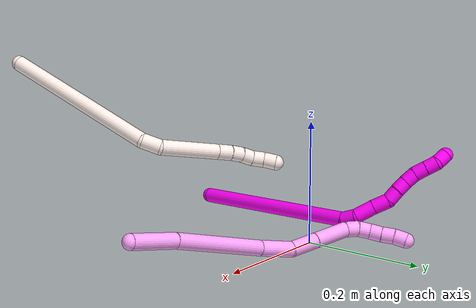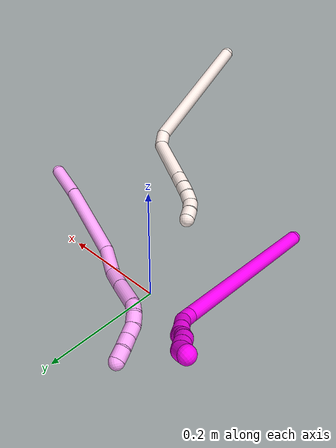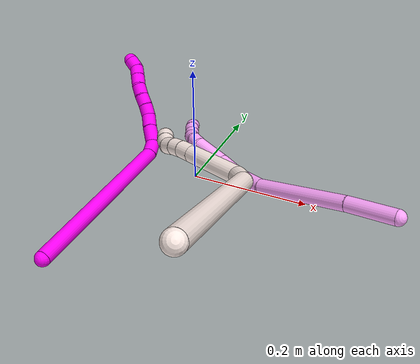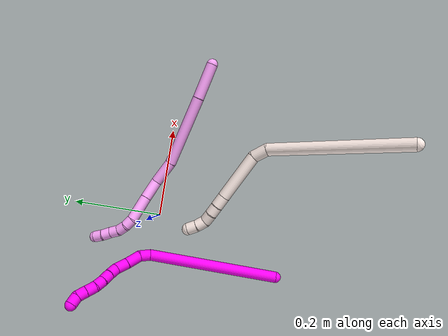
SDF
<sdf version="1.7">
 <world name="default">
  <model name="photoneo_s_sensor">
   <static>1</static>
   <pose>0 0 2 1.57079 1.57079 3.14159</pose>
   <link name="link">
    <inertial><mass>0.1</mass></inertial>
    <sensor name="sensor" type="depth">
     <update_rate>30</update_rate>
     <camera>
      <horizontal_fov>1.22</horizontal_fov>
      <image><width>1920</width><height>1200</height><format>B8G8R8</format></image>
      <clip><near>0.1</near><far>4</far></clip>
      <depth_camera><output>points</output></depth_camera>
     </camera>
     <plugin name="camera_plugin" filename="libgazebo_ros_depth_camera.so">
      <baseline>0.2</baseline>
      <alwaysOn>1</alwaysOn>
      <updateRate>0.0</updateRate>
      <cameraName>camera_ir</cameraName>
      <imageTopicName>/camera/color/image_raw</imageTopicName>
      <cameraInfoTopicName>/camera/color/camera_info</cameraInfoTopicName>
      <depthImageTopicName>/camera/depth/image_raw</depthImageTopicName>
      <depthImageCameraInfoTopicName>/camera/depth/camera_info</depthImageCameraInfoTopicName>
      <pointCloudTopicName>/camera/depth/points</pointCloudTopicName>
      <frameName>fr_optical</frameName>
      <pointCloudCutoff>0.1</pointCloudCutoff>
      <pointCloudCutoffMax>2.0</pointCloudCutoffMax>
      <distortionK1>0</distortionK1>
      <distortionK2>0</distortionK2>
      <distortionK3>0</distortionK3>
      <distortionT1>0</distortionT1>
      <distortionT2>0</distortionT2>
      <CxPrime>0</CxPrime>
      <Cx>0</Cx>
      <Cy>0</Cy>
      <focalLength>0</focalLength>
      <hackBaseline>0</hackBaseline>
     </plugin>
    </sensor>
   </link>
  </model>
  <model name="bin">
   <static>1</static>
   <link name="bottom">
    <collision name="collision-bottom">
     <pose>0 0 -0.01 0 -0 0</pose>
     <geometry><box><size>0.8 0.6 0.02</size></box></geometry>
     <surface>
      <friction><ode><mu>100</mu><mu2>100</mu2></ode></friction>
      <contact><collide_bitmask>65535</collide_bitmask></contact>
     </surface>
    </collision>
   </link>
   <link name="west_wall">
    <collision name="collision-west_wall">
     <pose>-0.41 0 0.1 0 -0 0</pose>
     <geometry><box><size>0.02 0.6 0.2</size></box></geometry>
     <surface>
      <friction><ode><mu>100</mu><mu2>100</mu2></ode></friction>
      <contact><collide_bitmask>65535</collide_bitmask></contact>
     </surface>
    </collision>
   </link>
   <link name="east_wall">
    <collision name="collision-east_wall">
     <pose>0.41 0 0.1 0 -0 0</pose>
     <geometry><box><size>0.02 0.6 0.2</size></box></geometry>
     <surface>
      <friction><ode><mu>100</mu><mu2>100</mu2></ode></friction>
      <contact><collide_bitmask>65535</collide_bitmask></contact>
     </surface>
    </collision>
   </link>
   <link name="south_wall">
    <collision name="collision-south_wall">
     <pose>0 -0.31 0.1 0 -0 0</pose>
     <geometry><box><size>0.8 0.02 0.2</size></box></geometry>
     <surface>
      <friction><ode><mu>100</mu><mu2>100</mu2></ode></friction>
      <contact><collide_bitmask>65535</collide_bitmask></contact>
     </surface>
    </collision>
   </link>
   <link name="north_wall">
    <collision name="collision-north_wall">
     <pose>0 0.31 0.1 0 -0 0</pose>
     <geometry><box><size>0.8 0.02 0.2</size></box></geometry>
     <surface>
      <friction><ode><mu>100</mu><mu2>100</mu2></ode></friction>
      <contact><collide_bitmask>65535</collide_bitmask></contact>
     </surface>
    </collision>
   </link>
  </model>
  <model name="4">
   <static>0</static>
   <link name="4">
    <collision name="collision-cylinder-e_1_1_4">
     <pose>-0.018576 0.005208 -0.034584 -2.99214 -0.488256 2.55767</pose>
     <geometry><cylinder><radius>0.0125</radius><length>0.079202</length></cylinder></geometry>
     <surface>
      <friction><ode><mu>1.16</mu><mu2>1.16</mu2><slip1>0</slip1><slip2>0</slip2></ode></friction>
      <contact><ode><kp>1e+06</kp><kd>1</kd><max_vel>0</max_vel><min_depth>0.001</min_depth></ode></contact>
     </surface>
    </collision>
    <visual name="visual-cylinder-e_1_1_4">
     <pose>-0.018576 0.005208 -0.034584 -2.99214 -0.488256 2.55767</pose>
     <geometry><cylinder><radius>0.0125</radius><length>0.079202</length></cylinder></geometry>
     <material><ambient>1 0.65098 0.996078 1</ambient></material>
    </visual>
    <collision name="collision-cylinder-e_2_4_5">
     <pose>-0.068979 0.017455 -0.142574 -3.04599 -0.407434 2.68646</pose>
     <geometry><cylinder><radius>0.0125</radius><length>0.160635</length></cylinder></geometry>
     <surface>
      <friction><ode><mu>1.16</mu><mu2>1.16</mu2><slip1>0</slip1><slip2>0</slip2></ode></friction>
      <contact><ode><kp>1e+06</kp><kd>1</kd><max_vel>0</max_vel><min_depth>0.001</min_depth></ode></contact>
     </surface>
    </collision>
    <visual name="visual-cylinder-e_2_4_5">
     <pose>-0.068979 0.017455 -0.142574 -3.04599 -0.407434 2.68646</pose>
     <geometry><cylinder><radius>0.0125</radius><length>0.160635</length></cylinder></geometry>
     <material><ambient>1 0.65098 0.996078 1</ambient></material>
    </visual>
    <collision name="collision-cylinder-e_3_5_6">
     <pose>-0.108731 0.03296 -0.241421 -2.82036 -0.287412 1.45806</pose>
     <geometry><cylinder><radius>0.0125</radius><length>0.055918</length></cylinder></geometry>
     <surface>
      <friction><ode><mu>1.16</mu><mu2>1.16</mu2><slip1>0</slip1><slip2>0</slip2></ode></friction>
      <contact><ode><kp>1e+06</kp><kd>1</kd><max_vel>0</max_vel><min_depth>0.001</min_depth></ode></contact>
     </surface>
    </collision>
    <visual name="visual-cylinder-e_3_5_6">
     <pose>-0.108731 0.03296 -0.241421 -2.82036 -0.287412 1.45806</pose>
     <geometry><cylinder><radius>0.0125</radius><length>0.055918</length></cylinder></geometry>
     <material><ambient>1 0.65098 0.996078 1</ambient></material>
    </visual>
    <collision name="collision-cylinder-e_4_6_7">
     <pose>-0.128378 0.051735 -0.282708 -2.56477 -0.55501 1.53012</pose>
     <geometry><cylinder><radius>0.0125</radius><length>0.044487</length></cylinder></geometry>
     <surface>
      <friction><ode><mu>1.16</mu><mu2>1.16</mu2><slip1>0</slip1><slip2>0</slip2></ode></friction>
      <contact><ode><kp>1e+06</kp><kd>1</kd><max_vel>0</max_vel><min_depth>0.001</min_depth></ode></contact>
     </surface>
    </collision>
    <visual name="visual-cylinder-e_4_6_7">
     <pose>-0.128378 0.051735 -0.282708 -2.56477 -0.55501 1.53012</pose>
     <geometry><cylinder><radius>0.0125</radius><length>0.044487</length></cylinder></geometry>
     <material><ambient>1 0.65098 0.996078 1</ambient></material>
    </visual>
    <collision name="collision-cylinder-e_5_7_8">
     <pose>-0.155847 0.074719 -0.31951 -2.59766 -0.571452 1.62278</pose>
     <geometry><cylinder><radius>0.0125</radius><length>0.058234</length></cylinder></geometry>
     <surface>
      <friction><ode><mu>1.16</mu><mu2>1.16</mu2><slip1>0</slip1><slip2>0</slip2></ode></friction>
      <contact><ode><kp>1e+06</kp><kd>1</kd><max_vel>0</max_vel><min_depth>0.001</min_depth></ode></contact>
     </surface>
    </collision>
    <visual name="visual-cylinder-e_5_7_8">
     <pose>-0.155847 0.074719 -0.31951 -2.59766 -0.571452 1.62278</pose>
     <geometry><cylinder><radius>0.0125</radius><length>0.058234</length></cylinder></geometry>
     <material><ambient>1 0.65098 0.996078 1</ambient></material>
    </visual>
    <collision name="collision-cylinder-e_6_8_9">
     <pose>-0.174219 0.092537 -0.349246 -2.61163 -0.252403 0.87471</pose>
     <geometry><cylinder><radius>0.0125</radius><length>0.021017</length></cylinder></geometry>
     <surface>
      <friction><ode><mu>1.16</mu><mu2>1.16</mu2><slip1>0</slip1><slip2>0</slip2></ode></friction>
      <contact><ode><kp>1e+06</kp><kd>1</kd><max_vel>0</max_vel><min_depth>0.001</min_depth></ode></contact>
     </surface>
    </collision>
    <visual name="visual-cylinder-e_6_8_9">
     <pose>-0.174219 0.092537 -0.349246 -2.61163 -0.252403 0.87471</pose>
     <geometry><cylinder><radius>0.0125</radius><length>0.021017</length></cylinder></geometry>
     <material><ambient>1 0.65098 0.996078 1</ambient></material>
    </visual>
    <collision name="collision-cylinder-e_7_9_10">
     <pose>-0.176456 0.101836 -0.367117 -2.71293 0.038734 -0.177502</pose>
     <geometry><cylinder><radius>0.0125</radius><length>0.020006</length></cylinder></geometry>
     <surface>
      <friction><ode><mu>1.16</mu><mu2>1.16</mu2><slip1>0</slip1><slip2>0</slip2></ode></friction>
      <contact><ode><kp>1e+06</kp><kd>1</kd><max_vel>0</max_vel><min_depth>0.001</min_depth></ode></contact>
     </surface>
    </collision>
    <visual name="visual-cylinder-e_7_9_10">
     <pose>-0.176456 0.101836 -0.367117 -2.71293 0.038734 -0.177502</pose>
     <geometry><cylinder><radius>0.0125</radius><length>0.020006</length></cylinder></geometry>
     <material><ambient>1 0.65098 0.996078 1</ambient></material>
    </visual>
    <collision name="collision-cylinder-e_8_10_11">
     <pose>-0.173222 0.111621 -0.384036 -2.51804 0.287021 -0.842991</pose>
     <geometry><cylinder><radius>0.0125</radius><length>0.020109</length></cylinder></geometry>
     <surface>
      <friction><ode><mu>1.16</mu><mu2>1.16</mu2><slip1>0</slip1><slip2>0</slip2></ode></friction>
      <contact><ode><kp>1e+06</kp><kd>1</kd><max_vel>0</max_vel><min_depth>0.001</min_depth></ode></contact>
     </surface>
    </collision>
    <visual name="visual-cylinder-e_8_10_11">
     <pose>-0.173222 0.111621 -0.384036 -2.51804 0.287021 -0.842991</pose>
     <geometry><cylinder><radius>0.0125</radius><length>0.020109</length></cylinder></geometry>
     <material><ambient>1 0.65098 0.996078 1</ambient></material>
    </visual>
    <collision name="collision-cylinder-e_9_11_12">
     <pose>-0.168453 0.123456 -0.399613 -2.46639 0.191352 -0.533727</pose>
     <geometry><cylinder><radius>0.0125</radius><length>0.020222</length></cylinder></geometry>
     <surface>
      <friction><ode><mu>1.16</mu><mu2>1.16</mu2><slip1>0</slip1><slip2>0</slip2></ode></friction>
      <contact><ode><kp>1e+06</kp><kd>1</kd><max_vel>0</max_vel><min_depth>0.001</min_depth></ode></contact>
     </surface>
    </collision>
    <visual name="visual-cylinder-e_9_11_12">
     <pose>-0.168453 0.123456 -0.399613 -2.46639 0.191352 -0.533727</pose>
     <geometry><cylinder><radius>0.0125</radius><length>0.020222</length></cylinder></geometry>
     <material><ambient>1 0.65098 0.996078 1</ambient></material>
    </visual>
    <collision name="collision-cylinder-e_10_12_2">
     <pose>-0.163002 0.134851 -0.415255 -2.55995 0.357445 -1.08606</pose>
     <geometry><cylinder><radius>0.0125</radius><length>0.02017</length></cylinder></geometry>
     <surface>
      <friction><ode><mu>1.16</mu><mu2>1.16</mu2><slip1>0</slip1><slip2>0</slip2></ode></friction>
      <contact><ode><kp>1e+06</kp><kd>1</kd><max_vel>0</max_vel><min_depth>0.001</min_depth></ode></contact>
     </surface>
    </collision>
    <visual name="visual-cylinder-e_10_12_2">
     <pose>-0.163002 0.134851 -0.415255 -2.55995 0.357445 -1.08606</pose>
     <geometry><cylinder><radius>0.0125</radius><length>0.02017</length></cylinder></geometry>
     <material><ambient>1 0.65098 0.996078 1</ambient></material>
    </visual>
    <collision name="collision-sphere-2">
     <pose>-0.159473 0.140042 -0.423149 0 -0 0</pose>
     <geometry><sphere><radius>0.0125</radius></sphere></geometry>
     <surface>
      <friction><ode><mu>1.16</mu><mu2>1.16</mu2><slip1>0</slip1><slip2>0</slip2></ode></friction>
      <contact><ode><kp>1e+06</kp><kd>1</kd><max_vel>0</max_vel><min_depth>0.001</min_depth></ode></contact>
     </surface>
    </collision>
    <visual name="visual-sphere-2">
     <pose>-0.159473 0.140042 -0.423149 0 -0 0</pose>
     <geometry><sphere><radius>0.0125</radius></sphere></geometry>
     <material><ambient>1 0.65098 0.996078 1</ambient></material>
    </visual>
    <collision name="collision-sphere-12">
     <pose>-0.16653 0.129661 -0.407361 0 -0 0</pose>
     <geometry><sphere><radius>0.0125</radius></sphere></geometry>
     <surface>
      <friction><ode><mu>1.16</mu><mu2>1.16</mu2><slip1>0</slip1><slip2>0</slip2></ode></friction>
      <contact><ode><kp>1e+06</kp><kd>1</kd><max_vel>0</max_vel><min_depth>0.001</min_depth></ode></contact>
     </surface>
    </collision>
    <visual name="visual-sphere-12">
     <pose>-0.16653 0.129661 -0.407361 0 -0 0</pose>
     <geometry><sphere><radius>0.0125</radius></sphere></geometry>
     <material><ambient>1 0.65098 0.996078 1</ambient></material>
    </visual>
    <collision name="collision-sphere-11">
     <pose>-0.170376 0.117252 -0.391865 0 -0 0</pose>
     <geometry><sphere><radius>0.0125</radius></sphere></geometry>
     <surface>
      <friction><ode><mu>1.16</mu><mu2>1.16</mu2><slip1>0</slip1><slip2>0</slip2></ode></friction>
      <contact><ode><kp>1e+06</kp><kd>1</kd><max_vel>0</max_vel><min_depth>0.001</min_depth></ode></contact>
     </surface>
    </collision>
    <visual name="visual-sphere-11">
     <pose>-0.170376 0.117252 -0.391865 0 -0 0</pose>
     <geometry><sphere><radius>0.0125</radius></sphere></geometry>
     <material><ambient>1 0.65098 0.996078 1</ambient></material>
    </visual>
    <collision name="collision-sphere-10">
     <pose>-0.176069 0.10599 -0.376208 0 -0 0</pose>
     <geometry><sphere><radius>0.0125</radius></sphere></geometry>
     <surface>
      <friction><ode><mu>1.16</mu><mu2>1.16</mu2><slip1>0</slip1><slip2>0</slip2></ode></friction>
      <contact><ode><kp>1e+06</kp><kd>1</kd><max_vel>0</max_vel><min_depth>0.001</min_depth></ode></contact>
     </surface>
    </collision>
    <visual name="visual-sphere-10">
     <pose>-0.176069 0.10599 -0.376208 0 -0 0</pose>
     <geometry><sphere><radius>0.0125</radius></sphere></geometry>
     <material><ambient>1 0.65098 0.996078 1</ambient></material>
    </visual>
    <collision name="collision-sphere-9">
     <pose>-0.176844 0.097681 -0.358026 0 -0 0</pose>
     <geometry><sphere><radius>0.0125</radius></sphere></geometry>
     <surface>
      <friction><ode><mu>1.16</mu><mu2>1.16</mu2><slip1>0</slip1><slip2>0</slip2></ode></friction>
      <contact><ode><kp>1e+06</kp><kd>1</kd><max_vel>0</max_vel><min_depth>0.001</min_depth></ode></contact>
     </surface>
    </collision>
    <visual name="visual-sphere-9">
     <pose>-0.176844 0.097681 -0.358026 0 -0 0</pose>
     <geometry><sphere><radius>0.0125</radius></sphere></geometry>
     <material><ambient>1 0.65098 0.996078 1</ambient></material>
    </visual>
    <collision name="collision-sphere-4">
     <pose>-0.037153 0.010415 -0.069168 0 -0 0</pose>
     <geometry><sphere><radius>0.0125</radius></sphere></geometry>
     <surface>
      <friction><ode><mu>1.16</mu><mu2>1.16</mu2><slip1>0</slip1><slip2>0</slip2></ode></friction>
      <contact><ode><kp>1e+06</kp><kd>1</kd><max_vel>0</max_vel><min_depth>0.001</min_depth></ode></contact>
     </surface>
    </collision>
    <visual name="visual-sphere-4">
     <pose>-0.037153 0.010415 -0.069168 0 -0 0</pose>
     <geometry><sphere><radius>0.0125</radius></sphere></geometry>
     <material><ambient>1 0.65098 0.996078 1</ambient></material>
    </visual>
    <collision name="collision-sphere-1">
     <geometry><sphere><radius>0.0125</radius></sphere></geometry>
     <surface>
      <friction><ode><mu>1.16</mu><mu2>1.16</mu2><slip1>0</slip1><slip2>0</slip2></ode></friction>
      <contact><ode><kp>1e+06</kp><kd>1</kd><max_vel>0</max_vel><min_depth>0.001</min_depth></ode></contact>
     </surface>
    </collision>
    <visual name="visual-sphere-1">
     <geometry><sphere><radius>0.0125</radius></sphere></geometry>
     <material><ambient>1 0.65098 0.996078 1</ambient></material>
    </visual>
    <collision name="collision-sphere-8">
     <pose>-0.171595 0.087393 -0.340466 0 -0 0</pose>
     <geometry><sphere><radius>0.0125</radius></sphere></geometry>
     <surface>
      <friction><ode><mu>1.16</mu><mu2>1.16</mu2><slip1>0</slip1><slip2>0</slip2></ode></friction>
      <contact><ode><kp>1e+06</kp><kd>1</kd><max_vel>0</max_vel><min_depth>0.001</min_depth></ode></contact>
     </surface>
    </collision>
    <visual name="visual-sphere-8">
     <pose>-0.171595 0.087393 -0.340466 0 -0 0</pose>
     <geometry><sphere><radius>0.0125</radius></sphere></geometry>
     <material><ambient>1 0.65098 0.996078 1</ambient></material>
    </visual>
    <collision name="collision-sphere-5">
     <pose>-0.100805 0.024494 -0.21598 0 -0 0</pose>
     <geometry><sphere><radius>0.0125</radius></sphere></geometry>
     <surface>
      <friction><ode><mu>1.16</mu><mu2>1.16</mu2><slip1>0</slip1><slip2>0</slip2></ode></friction>
      <contact><ode><kp>1e+06</kp><kd>1</kd><max_vel>0</max_vel><min_depth>0.001</min_depth></ode></contact>
     </surface>
    </collision>
    <visual name="visual-sphere-5">
     <pose>-0.100805 0.024494 -0.21598 0 -0 0</pose>
     <geometry><sphere><radius>0.0125</radius></sphere></geometry>
     <material><ambient>1 0.65098 0.996078 1</ambient></material>
    </visual>
    <collision name="collision-sphere-6">
     <pose>-0.116656 0.041425 -0.266862 0 -0 0</pose>
     <geometry><sphere><radius>0.0125</radius></sphere></geometry>
     <surface>
      <friction><ode><mu>1.16</mu><mu2>1.16</mu2><slip1>0</slip1><slip2>0</slip2></ode></friction>
      <contact><ode><kp>1e+06</kp><kd>1</kd><max_vel>0</max_vel><min_depth>0.001</min_depth></ode></contact>
     </surface>
    </collision>
    <visual name="visual-sphere-6">
     <pose>-0.116656 0.041425 -0.266862 0 -0 0</pose>
     <geometry><sphere><radius>0.0125</radius></sphere></geometry>
     <material><ambient>1 0.65098 0.996078 1</ambient></material>
    </visual>
    <collision name="collision-sphere-7">
     <pose>-0.140099 0.062045 -0.298554 0 -0 0</pose>
     <geometry><sphere><radius>0.0125</radius></sphere></geometry>
     <surface>
      <friction><ode><mu>1.16</mu><mu2>1.16</mu2><slip1>0</slip1><slip2>0</slip2></ode></friction>
      <contact><ode><kp>1e+06</kp><kd>1</kd><max_vel>0</max_vel><min_depth>0.001</min_depth></ode></contact>
     </surface>
    </collision>
    <visual name="visual-sphere-7">
     <pose>-0.140099 0.062045 -0.298554 0 -0 0</pose>
     <geometry><sphere><radius>0.0125</radius></sphere></geometry>
     <material><ambient>1 0.65098 0.996078 1</ambient></material>
    </visual>
    <inertial>
     <pose>-0.101575 0.04631 -0.218376 0 -0 0</pose>
     <mass>0.5</mass>
     <inertia>
      <ixx>-0.000128</ixx>
      <ixy>0</ixy>
      <ixz>0</ixz>
      <iyy>0.000575</iyy>
      <iyz>0</iyz>
      <izz>8.8e-05</izz>
     </inertia>
    </inertial>
   </link>
   <pose>0.349344 -0.068686 0.073118 0.88289 0.518118 0.633033</pose>
  </model>
  <model name="10">
   <static>0</static>
   <link name="10">
    <collision name="collision-cylinder-e_1_1_4">
     <pose>0.004483 0.058055 -0.134201 -2.73331 0.030648 -0.147781</pose>
     <geometry><cylinder><radius>0.0125</radius><length>0.292577</length></cylinder></geometry>
     <surface>
      <friction><ode><mu>1.16</mu><mu2>1.16</mu2><slip1>0</slip1><slip2>0</slip2></ode></friction>
      <contact><ode><kp>1e+06</kp><kd>1</kd><max_vel>0</max_vel><min_depth>0.001</min_depth></ode></contact>
     </surface>
    </collision>
    <visual name="visual-cylinder-e_1_1_4">
     <pose>0.004483 0.058055 -0.134201 -2.73331 0.030648 -0.147781</pose>
     <geometry><cylinder><radius>0.0125</radius><length>0.292577</length></cylinder></geometry>
     <material><ambient>1 0 0.964706 1</ambient></material>
    </visual>
    <collision name="collision-cylinder-e_2_4_5">
     <pose>0.008075 0.124829 -0.276921 -2.34456 -0.072915 0.172821</pose>
     <geometry><cylinder><radius>0.0125</radius><length>0.024446</length></cylinder></geometry>
     <surface>
      <friction><ode><mu>1.16</mu><mu2>1.16</mu2><slip1>0</slip1><slip2>0</slip2></ode></friction>
      <contact><ode><kp>1e+06</kp><kd>1</kd><max_vel>0</max_vel><min_depth>0.001</min_depth></ode></contact>
     </surface>
    </collision>
    <visual name="visual-cylinder-e_2_4_5">
     <pose>0.008075 0.124829 -0.276921 -2.34456 -0.072915 0.172821</pose>
     <geometry><cylinder><radius>0.0125</radius><length>0.024446</length></cylinder></geometry>
     <material><ambient>1 0 0.964706 1</ambient></material>
    </visual>
    <collision name="collision-cylinder-e_3_5_6">
     <pose>0.001444 0.147487 -0.291823 -2.0002 -0.358296 0.549898</pose>
     <geometry><cylinder><radius>0.0125</radius><length>0.03274</length></cylinder></geometry>
     <surface>
      <friction><ode><mu>1.16</mu><mu2>1.16</mu2><slip1>0</slip1><slip2>0</slip2></ode></friction>
      <contact><ode><kp>1e+06</kp><kd>1</kd><max_vel>0</max_vel><min_depth>0.001</min_depth></ode></contact>
     </surface>
    </collision>
    <visual name="visual-cylinder-e_3_5_6">
     <pose>0.001444 0.147487 -0.291823 -2.0002 -0.358296 0.549898</pose>
     <geometry><cylinder><radius>0.0125</radius><length>0.03274</length></cylinder></geometry>
     <material><ambient>1 0 0.964706 1</ambient></material>
    </visual>
    <collision name="collision-cylinder-e_4_6_7">
     <pose>-0.008582 0.17253 -0.304619 -2.09459 -0.322497 0.549354</pose>
     <geometry><cylinder><radius>0.0125</radius><length>0.02704</length></cylinder></geometry>
     <surface>
      <friction><ode><mu>1.16</mu><mu2>1.16</mu2><slip1>0</slip1><slip2>0</slip2></ode></friction>
      <contact><ode><kp>1e+06</kp><kd>1</kd><max_vel>0</max_vel><min_depth>0.001</min_depth></ode></contact>
     </surface>
    </collision>
    <visual name="visual-cylinder-e_4_6_7">
     <pose>-0.008582 0.17253 -0.304619 -2.09459 -0.322497 0.549354</pose>
     <geometry><cylinder><radius>0.0125</radius><length>0.02704</length></cylinder></geometry>
     <material><ambient>1 0 0.964706 1</ambient></material>
    </visual>
    <collision name="collision-cylinder-e_5_7_8">
     <pose>-0.015259 0.194086 -0.311688 -1.63339 -0.224554 0.238936</pose>
     <geometry><cylinder><radius>0.0125</radius><length>0.021486</length></cylinder></geometry>
     <surface>
      <friction><ode><mu>1.16</mu><mu2>1.16</mu2><slip1>0</slip1><slip2>0</slip2></ode></friction>
      <contact><ode><kp>1e+06</kp><kd>1</kd><max_vel>0</max_vel><min_depth>0.001</min_depth></ode></contact>
     </surface>
    </collision>
    <visual name="visual-cylinder-e_5_7_8">
     <pose>-0.015259 0.194086 -0.311688 -1.63339 -0.224554 0.238936</pose>
     <geometry><cylinder><radius>0.0125</radius><length>0.021486</length></cylinder></geometry>
     <material><ambient>1 0 0.964706 1</ambient></material>
    </visual>
    <collision name="collision-cylinder-e_6_8_9">
     <pose>-0.020943 0.213987 -0.312965 -1.6365 -0.334624 0.356901</pose>
     <geometry><cylinder><radius>0.0125</radius><length>0.020049</length></cylinder></geometry>
     <surface>
      <friction><ode><mu>1.16</mu><mu2>1.16</mu2><slip1>0</slip1><slip2>0</slip2></ode></friction>
      <contact><ode><kp>1e+06</kp><kd>1</kd><max_vel>0</max_vel><min_depth>0.001</min_depth></ode></contact>
     </surface>
    </collision>
    <visual name="visual-cylinder-e_6_8_9">
     <pose>-0.020943 0.213987 -0.312965 -1.6365 -0.334624 0.356901</pose>
     <geometry><cylinder><radius>0.0125</radius><length>0.020049</length></cylinder></geometry>
     <material><ambient>1 0 0.964706 1</ambient></material>
    </visual>
    <collision name="collision-cylinder-e_7_9_10">
     <pose>-0.027276 0.232992 -0.315336 -1.75185 -0.303355 0.362714</pose>
     <geometry><cylinder><radius>0.0125</radius><length>0.02036</length></cylinder></geometry>
     <surface>
      <friction><ode><mu>1.16</mu><mu2>1.16</mu2><slip1>0</slip1><slip2>0</slip2></ode></friction>
      <contact><ode><kp>1e+06</kp><kd>1</kd><max_vel>0</max_vel><min_depth>0.001</min_depth></ode></contact>
     </surface>
    </collision>
    <visual name="visual-cylinder-e_7_9_10">
     <pose>-0.027276 0.232992 -0.315336 -1.75185 -0.303355 0.362714</pose>
     <geometry><cylinder><radius>0.0125</radius><length>0.02036</length></cylinder></geometry>
     <material><ambient>1 0 0.964706 1</ambient></material>
    </visual>
    <collision name="collision-cylinder-e_8_10_11">
     <pose>-0.033448 0.251622 -0.321561 -2.02905 -0.300113 0.477076</pose>
     <geometry><cylinder><radius>0.0125</radius><length>0.021182</length></cylinder></geometry>
     <surface>
      <friction><ode><mu>1.16</mu><mu2>1.16</mu2><slip1>0</slip1><slip2>0</slip2></ode></friction>
      <contact><ode><kp>1e+06</kp><kd>1</kd><max_vel>0</max_vel><min_depth>0.001</min_depth></ode></contact>
     </surface>
    </collision>
    <visual name="visual-cylinder-e_8_10_11">
     <pose>-0.033448 0.251622 -0.321561 -2.02905 -0.300113 0.477076</pose>
     <geometry><cylinder><radius>0.0125</radius><length>0.021182</length></cylinder></geometry>
     <material><ambient>1 0 0.964706 1</ambient></material>
    </visual>
    <collision name="collision-cylinder-e_9_11_12">
     <pose>-0.039714 0.269244 -0.330295 -2.03296 -0.31711 0.505529</pose>
     <geometry><cylinder><radius>0.0125</radius><length>0.020103</length></cylinder></geometry>
     <surface>
      <friction><ode><mu>1.16</mu><mu2>1.16</mu2><slip1>0</slip1><slip2>0</slip2></ode></friction>
      <contact><ode><kp>1e+06</kp><kd>1</kd><max_vel>0</max_vel><min_depth>0.001</min_depth></ode></contact>
     </surface>
    </collision>
    <visual name="visual-cylinder-e_9_11_12">
     <pose>-0.039714 0.269244 -0.330295 -2.03296 -0.31711 0.505529</pose>
     <geometry><cylinder><radius>0.0125</radius><length>0.020103</length></cylinder></geometry>
     <material><ambient>1 0 0.964706 1</ambient></material>
    </visual>
    <collision name="collision-cylinder-e_10_12_2">
     <pose>-0.048251 0.286217 -0.334569 -1.57256 -0.570285 0.571235</pose>
     <geometry><cylinder><radius>0.0125</radius><length>0.020016</length></cylinder></geometry>
     <surface>
      <friction><ode><mu>1.16</mu><mu2>1.16</mu2><slip1>0</slip1><slip2>0</slip2></ode></friction>
      <contact><ode><kp>1e+06</kp><kd>1</kd><max_vel>0</max_vel><min_depth>0.001</min_depth></ode></contact>
     </surface>
    </collision>
    <visual name="visual-cylinder-e_10_12_2">
     <pose>-0.048251 0.286217 -0.334569 -1.57256 -0.570285 0.571235</pose>
     <geometry><cylinder><radius>0.0125</radius><length>0.020016</length></cylinder></geometry>
     <material><ambient>1 0 0.964706 1</ambient></material>
    </visual>
    <collision name="collision-sphere-2">
     <pose>-0.053654 0.294641 -0.334583 0 -0 0</pose>
     <geometry><sphere><radius>0.0125</radius></sphere></geometry>
     <surface>
      <friction><ode><mu>1.16</mu><mu2>1.16</mu2><slip1>0</slip1><slip2>0</slip2></ode></friction>
      <contact><ode><kp>1e+06</kp><kd>1</kd><max_vel>0</max_vel><min_depth>0.001</min_depth></ode></contact>
     </surface>
    </collision>
    <visual name="visual-sphere-2">
     <pose>-0.053654 0.294641 -0.334583 0 -0 0</pose>
     <geometry><sphere><radius>0.0125</radius></sphere></geometry>
     <material><ambient>1 0 0.964706 1</ambient></material>
    </visual>
    <collision name="collision-sphere-12">
     <pose>-0.042848 0.277793 -0.334554 0 -0 0</pose>
     <geometry><sphere><radius>0.0125</radius></sphere></geometry>
     <surface>
      <friction><ode><mu>1.16</mu><mu2>1.16</mu2><slip1>0</slip1><slip2>0</slip2></ode></friction>
      <contact><ode><kp>1e+06</kp><kd>1</kd><max_vel>0</max_vel><min_depth>0.001</min_depth></ode></contact>
     </surface>
    </collision>
    <visual name="visual-sphere-12">
     <pose>-0.042848 0.277793 -0.334554 0 -0 0</pose>
     <geometry><sphere><radius>0.0125</radius></sphere></geometry>
     <material><ambient>1 0 0.964706 1</ambient></material>
    </visual>
    <collision name="collision-sphere-11">
     <pose>-0.036579 0.260696 -0.326037 0 -0 0</pose>
     <geometry><sphere><radius>0.0125</radius></sphere></geometry>
     <surface>
      <friction><ode><mu>1.16</mu><mu2>1.16</mu2><slip1>0</slip1><slip2>0</slip2></ode></friction>
      <contact><ode><kp>1e+06</kp><kd>1</kd><max_vel>0</max_vel><min_depth>0.001</min_depth></ode></contact>
     </surface>
    </collision>
    <visual name="visual-sphere-11">
     <pose>-0.036579 0.260696 -0.326037 0 -0 0</pose>
     <geometry><sphere><radius>0.0125</radius></sphere></geometry>
     <material><ambient>1 0 0.964706 1</ambient></material>
    </visual>
    <collision name="collision-sphere-10">
     <pose>-0.030317 0.242548 -0.317085 0 -0 0</pose>
     <geometry><sphere><radius>0.0125</radius></sphere></geometry>
     <surface>
      <friction><ode><mu>1.16</mu><mu2>1.16</mu2><slip1>0</slip1><slip2>0</slip2></ode></friction>
      <contact><ode><kp>1e+06</kp><kd>1</kd><max_vel>0</max_vel><min_depth>0.001</min_depth></ode></contact>
     </surface>
    </collision>
    <visual name="visual-sphere-10">
     <pose>-0.030317 0.242548 -0.317085 0 -0 0</pose>
     <geometry><sphere><radius>0.0125</radius></sphere></geometry>
     <material><ambient>1 0 0.964706 1</ambient></material>
    </visual>
    <collision name="collision-sphere-9">
     <pose>-0.024235 0.223436 -0.313587 0 -0 0</pose>
     <geometry><sphere><radius>0.0125</radius></sphere></geometry>
     <surface>
      <friction><ode><mu>1.16</mu><mu2>1.16</mu2><slip1>0</slip1><slip2>0</slip2></ode></friction>
      <contact><ode><kp>1e+06</kp><kd>1</kd><max_vel>0</max_vel><min_depth>0.001</min_depth></ode></contact>
     </surface>
    </collision>
    <visual name="visual-sphere-9">
     <pose>-0.024235 0.223436 -0.313587 0 -0 0</pose>
     <geometry><sphere><radius>0.0125</radius></sphere></geometry>
     <material><ambient>1 0 0.964706 1</ambient></material>
    </visual>
    <collision name="collision-sphere-4">
     <pose>0.008966 0.116109 -0.268402 0 -0 0</pose>
     <geometry><sphere><radius>0.0125</radius></sphere></geometry>
     <surface>
      <friction><ode><mu>1.16</mu><mu2>1.16</mu2><slip1>0</slip1><slip2>0</slip2></ode></friction>
      <contact><ode><kp>1e+06</kp><kd>1</kd><max_vel>0</max_vel><min_depth>0.001</min_depth></ode></contact>
     </surface>
    </collision>
    <visual name="visual-sphere-4">
     <pose>0.008966 0.116109 -0.268402 0 -0 0</pose>
     <geometry><sphere><radius>0.0125</radius></sphere></geometry>
     <material><ambient>1 0 0.964706 1</ambient></material>
    </visual>
    <collision name="collision-sphere-1">
     <geometry><sphere><radius>0.0125</radius></sphere></geometry>
     <surface>
      <friction><ode><mu>1.16</mu><mu2>1.16</mu2><slip1>0</slip1><slip2>0</slip2></ode></friction>
      <contact><ode><kp>1e+06</kp><kd>1</kd><max_vel>0</max_vel><min_depth>0.001</min_depth></ode></contact>
     </surface>
    </collision>
    <visual name="visual-sphere-1">
     <geometry><sphere><radius>0.0125</radius></sphere></geometry>
     <material><ambient>1 0 0.964706 1</ambient></material>
    </visual>
    <collision name="collision-sphere-8">
     <pose>-0.017651 0.204539 -0.312343 0 -0 0</pose>
     <geometry><sphere><radius>0.0125</radius></sphere></geometry>
     <surface>
      <friction><ode><mu>1.16</mu><mu2>1.16</mu2><slip1>0</slip1><slip2>0</slip2></ode></friction>
      <contact><ode><kp>1e+06</kp><kd>1</kd><max_vel>0</max_vel><min_depth>0.001</min_depth></ode></contact>
     </surface>
    </collision>
    <visual name="visual-sphere-8">
     <pose>-0.017651 0.204539 -0.312343 0 -0 0</pose>
     <geometry><sphere><radius>0.0125</radius></sphere></geometry>
     <material><ambient>1 0 0.964706 1</ambient></material>
    </visual>
    <collision name="collision-sphere-5">
     <pose>0.007185 0.133549 -0.28544 0 -0 0</pose>
     <geometry><sphere><radius>0.0125</radius></sphere></geometry>
     <surface>
      <friction><ode><mu>1.16</mu><mu2>1.16</mu2><slip1>0</slip1><slip2>0</slip2></ode></friction>
      <contact><ode><kp>1e+06</kp><kd>1</kd><max_vel>0</max_vel><min_depth>0.001</min_depth></ode></contact>
     </surface>
    </collision>
    <visual name="visual-sphere-5">
     <pose>0.007185 0.133549 -0.28544 0 -0 0</pose>
     <geometry><sphere><radius>0.0125</radius></sphere></geometry>
     <material><ambient>1 0 0.964706 1</ambient></material>
    </visual>
    <collision name="collision-sphere-6">
     <pose>-0.004297 0.161426 -0.298205 0 -0 0</pose>
     <geometry><sphere><radius>0.0125</radius></sphere></geometry>
     <surface>
      <friction><ode><mu>1.16</mu><mu2>1.16</mu2><slip1>0</slip1><slip2>0</slip2></ode></friction>
      <contact><ode><kp>1e+06</kp><kd>1</kd><max_vel>0</max_vel><min_depth>0.001</min_depth></ode></contact>
     </surface>
    </collision>
    <visual name="visual-sphere-6">
     <pose>-0.004297 0.161426 -0.298205 0 -0 0</pose>
     <geometry><sphere><radius>0.0125</radius></sphere></geometry>
     <material><ambient>1 0 0.964706 1</ambient></material>
    </visual>
    <collision name="collision-sphere-7">
     <pose>-0.012867 0.183634 -0.311033 0 -0 0</pose>
     <geometry><sphere><radius>0.0125</radius></sphere></geometry>
     <surface>
      <friction><ode><mu>1.16</mu><mu2>1.16</mu2><slip1>0</slip1><slip2>0</slip2></ode></friction>
      <contact><ode><kp>1e+06</kp><kd>1</kd><max_vel>0</max_vel><min_depth>0.001</min_depth></ode></contact>
     </surface>
    </collision>
    <visual name="visual-sphere-7">
     <pose>-0.012867 0.183634 -0.311033 0 -0 0</pose>
     <geometry><sphere><radius>0.0125</radius></sphere></geometry>
     <material><ambient>1 0 0.964706 1</ambient></material>
    </visual>
    <inertial>
     <pose>-0.004903 0.118413 -0.20673 0 -0 0</pose>
     <mass>0.5</mass>
     <inertia>
      <ixx>0.001784</ixx>
      <ixy>0</ixy>
      <ixz>0</ixz>
      <iyy>-0.002183</iyy>
      <iyz>0</iyz>
      <izz>-0.000933</izz>
     </inertia>
    </inertial>
   </link>
   <pose>-0.098523 -0.288502 0.012491 1.17711 -0.350906 0.004112</pose>
  </model>
  <model name="11">
   <static>0</static>
   <link name="11">
    <collision name="collision-cylinder-e_1_1_4">
     <pose>0.062622 -0.034291 -0.11112 2.84227 0.493964 2.06361</pose>
     <geometry><cylinder><radius>0.0125</radius><length>0.264159</length></cylinder></geometry>
     <surface>
      <friction><ode><mu>1.16</mu><mu2>1.16</mu2><slip1>0</slip1><slip2>0</slip2></ode></friction>
      <contact><ode><kp>1e+06</kp><kd>1</kd><max_vel>0</max_vel><min_depth>0.001</min_depth></ode></contact>
     </surface>
    </collision>
    <visual name="visual-cylinder-e_1_1_4">
     <pose>0.062622 -0.034291 -0.11112 2.84227 0.493964 2.06361</pose>
     <geometry><cylinder><radius>0.0125</radius><length>0.264159</length></cylinder></geometry>
     <material><ambient>1 0.933333 0.909804 1</ambient></material>
    </visual>
    <collision name="collision-cylinder-e_2_4_5">
     <pose>0.131314 -0.065764 -0.236011 -2.93969 0.407665 -2.23028</pose>
     <geometry><cylinder><radius>0.0125</radius><length>0.030622</length></cylinder></geometry>
     <surface>
      <friction><ode><mu>1.16</mu><mu2>1.16</mu2><slip1>0</slip1><slip2>0</slip2></ode></friction>
      <contact><ode><kp>1e+06</kp><kd>1</kd><max_vel>0</max_vel><min_depth>0.001</min_depth></ode></contact>
     </surface>
    </collision>
    <visual name="visual-cylinder-e_2_4_5">
     <pose>0.131314 -0.065764 -0.236011 -2.93969 0.407665 -2.23028</pose>
     <geometry><cylinder><radius>0.0125</radius><length>0.030622</length></cylinder></geometry>
     <material><ambient>1 0.933333 0.909804 1</ambient></material>
    </visual>
    <collision name="collision-cylinder-e_3_5_6">
     <pose>0.151196 -0.032494 -0.286701 -2.45192 0.280981 -0.750177</pose>
     <geometry><cylinder><radius>0.0125</radius><length>0.09962</length></cylinder></geometry>
     <surface>
      <friction><ode><mu>1.16</mu><mu2>1.16</mu2><slip1>0</slip1><slip2>0</slip2></ode></friction>
      <contact><ode><kp>1e+06</kp><kd>1</kd><max_vel>0</max_vel><min_depth>0.001</min_depth></ode></contact>
     </surface>
    </collision>
    <visual name="visual-cylinder-e_3_5_6">
     <pose>0.151196 -0.032494 -0.286701 -2.45192 0.280981 -0.750177</pose>
     <geometry><cylinder><radius>0.0125</radius><length>0.09962</length></cylinder></geometry>
     <material><ambient>1 0.933333 0.909804 1</ambient></material>
    </visual>
    <collision name="collision-cylinder-e_4_6_7">
     <pose>0.168384 0.005398 -0.332643 -2.45191 0.280991 -0.750188</pose>
     <geometry><cylinder><radius>0.0125</radius><length>0.024346</length></cylinder></geometry>
     <surface>
      <friction><ode><mu>1.16</mu><mu2>1.16</mu2><slip1>0</slip1><slip2>0</slip2></ode></friction>
      <contact><ode><kp>1e+06</kp><kd>1</kd><max_vel>0</max_vel><min_depth>0.001</min_depth></ode></contact>
     </surface>
    </collision>
    <visual name="visual-cylinder-e_4_6_7">
     <pose>0.168384 0.005398 -0.332643 -2.45191 0.280991 -0.750188</pose>
     <geometry><cylinder><radius>0.0125</radius><length>0.024346</length></cylinder></geometry>
     <material><ambient>1 0.933333 0.909804 1</ambient></material>
    </visual>
    <collision name="collision-cylinder-e_5_7_8">
     <pose>0.173983 0.018704 -0.349639 -2.50749 0.220959 -0.65204</pose>
     <geometry><cylinder><radius>0.0125</radius><length>0.020289</length></cylinder></geometry>
     <surface>
      <friction><ode><mu>1.16</mu><mu2>1.16</mu2><slip1>0</slip1><slip2>0</slip2></ode></friction>
      <contact><ode><kp>1e+06</kp><kd>1</kd><max_vel>0</max_vel><min_depth>0.001</min_depth></ode></contact>
     </surface>
    </collision>
    <visual name="visual-cylinder-e_5_7_8">
     <pose>0.173983 0.018704 -0.349639 -2.50749 0.220959 -0.65204</pose>
     <geometry><cylinder><radius>0.0125</radius><length>0.020289</length></cylinder></geometry>
     <material><ambient>1 0.933333 0.909804 1</ambient></material>
    </visual>
    <collision name="collision-cylinder-e_6_8_9">
     <pose>0.177674 0.029562 -0.366395 -2.6245 0.144221 -0.533268</pose>
     <geometry><cylinder><radius>0.0125</radius><length>0.020418</length></cylinder></geometry>
     <surface>
      <friction><ode><mu>1.16</mu><mu2>1.16</mu2><slip1>0</slip1><slip2>0</slip2></ode></friction>
      <contact><ode><kp>1e+06</kp><kd>1</kd><max_vel>0</max_vel><min_depth>0.001</min_depth></ode></contact>
     </surface>
    </collision>
    <visual name="visual-cylinder-e_6_8_9">
     <pose>0.177674 0.029562 -0.366395 -2.6245 0.144221 -0.533268</pose>
     <geometry><cylinder><radius>0.0125</radius><length>0.020418</length></cylinder></geometry>
     <material><ambient>1 0.933333 0.909804 1</ambient></material>
    </visual>
    <collision name="collision-cylinder-e_7_9_10">
     <pose>0.184649 0.037546 -0.383117 -2.78151 0.57585 -2.03945</pose>
     <geometry><cylinder><radius>0.0125</radius><length>0.02023</length></cylinder></geometry>
     <surface>
      <friction><ode><mu>1.16</mu><mu2>1.16</mu2><slip1>0</slip1><slip2>0</slip2></ode></friction>
      <contact><ode><kp>1e+06</kp><kd>1</kd><max_vel>0</max_vel><min_depth>0.001</min_depth></ode></contact>
     </surface>
    </collision>
    <visual name="visual-cylinder-e_7_9_10">
     <pose>0.184649 0.037546 -0.383117 -2.78151 0.57585 -2.03945</pose>
     <geometry><cylinder><radius>0.0125</radius><length>0.02023</length></cylinder></geometry>
     <material><ambient>1 0.933333 0.909804 1</ambient></material>
    </visual>
    <collision name="collision-cylinder-e_8_10_2">
     <pose>0.195922 0.041804 -0.399323 -2.98928 0.603572 -2.66084</pose>
     <geometry><cylinder><radius>0.0125</radius><length>0.020316</length></cylinder></geometry>
     <surface>
      <friction><ode><mu>1.16</mu><mu2>1.16</mu2><slip1>0</slip1><slip2>0</slip2></ode></friction>
      <contact><ode><kp>1e+06</kp><kd>1</kd><max_vel>0</max_vel><min_depth>0.001</min_depth></ode></contact>
     </surface>
    </collision>
    <visual name="visual-cylinder-e_8_10_2">
     <pose>0.195922 0.041804 -0.399323 -2.98928 0.603572 -2.66084</pose>
     <geometry><cylinder><radius>0.0125</radius><length>0.020316</length></cylinder></geometry>
     <material><ambient>1 0.933333 0.909804 1</ambient></material>
    </visual>
    <collision name="collision-sphere-2">
     <pose>0.201688 0.043073 -0.407589 0 -0 0</pose>
     <geometry><sphere><radius>0.0125</radius></sphere></geometry>
     <surface>
      <friction><ode><mu>1.16</mu><mu2>1.16</mu2><slip1>0</slip1><slip2>0</slip2></ode></friction>
      <contact><ode><kp>1e+06</kp><kd>1</kd><max_vel>0</max_vel><min_depth>0.001</min_depth></ode></contact>
     </surface>
    </collision>
    <visual name="visual-sphere-2">
     <pose>0.201688 0.043073 -0.407589 0 -0 0</pose>
     <geometry><sphere><radius>0.0125</radius></sphere></geometry>
     <material><ambient>1 0.933333 0.909804 1</ambient></material>
    </visual>
    <collision name="collision-sphere-10">
     <pose>0.190157 0.040535 -0.391056 0 -0 0</pose>
     <geometry><sphere><radius>0.0125</radius></sphere></geometry>
     <surface>
      <friction><ode><mu>1.16</mu><mu2>1.16</mu2><slip1>0</slip1><slip2>0</slip2></ode></friction>
      <contact><ode><kp>1e+06</kp><kd>1</kd><max_vel>0</max_vel><min_depth>0.001</min_depth></ode></contact>
     </surface>
    </collision>
    <visual name="visual-sphere-10">
     <pose>0.190157 0.040535 -0.391056 0 -0 0</pose>
     <geometry><sphere><radius>0.0125</radius></sphere></geometry>
     <material><ambient>1 0.933333 0.909804 1</ambient></material>
    </visual>
    <collision name="collision-sphere-9">
     <pose>0.179141 0.034557 -0.375177 0 -0 0</pose>
     <geometry><sphere><radius>0.0125</radius></sphere></geometry>
     <surface>
      <friction><ode><mu>1.16</mu><mu2>1.16</mu2><slip1>0</slip1><slip2>0</slip2></ode></friction>
      <contact><ode><kp>1e+06</kp><kd>1</kd><max_vel>0</max_vel><min_depth>0.001</min_depth></ode></contact>
     </surface>
    </collision>
    <visual name="visual-sphere-9">
     <pose>0.179141 0.034557 -0.375177 0 -0 0</pose>
     <geometry><sphere><radius>0.0125</radius></sphere></geometry>
     <material><ambient>1 0.933333 0.909804 1</ambient></material>
    </visual>
    <collision name="collision-sphere-4">
     <pose>0.125243 -0.068582 -0.22224 0 -0 0</pose>
     <geometry><sphere><radius>0.0125</radius></sphere></geometry>
     <surface>
      <friction><ode><mu>1.16</mu><mu2>1.16</mu2><slip1>0</slip1><slip2>0</slip2></ode></friction>
      <contact><ode><kp>1e+06</kp><kd>1</kd><max_vel>0</max_vel><min_depth>0.001</min_depth></ode></contact>
     </surface>
    </collision>
    <visual name="visual-sphere-4">
     <pose>0.125243 -0.068582 -0.22224 0 -0 0</pose>
     <geometry><sphere><radius>0.0125</radius></sphere></geometry>
     <material><ambient>1 0.933333 0.909804 1</ambient></material>
    </visual>
    <collision name="collision-sphere-1">
     <geometry><sphere><radius>0.0125</radius></sphere></geometry>
     <surface>
      <friction><ode><mu>1.16</mu><mu2>1.16</mu2><slip1>0</slip1><slip2>0</slip2></ode></friction>
      <contact><ode><kp>1e+06</kp><kd>1</kd><max_vel>0</max_vel><min_depth>0.001</min_depth></ode></contact>
     </surface>
    </collision>
    <visual name="visual-sphere-1">
     <geometry><sphere><radius>0.0125</radius></sphere></geometry>
     <material><ambient>1 0.933333 0.909804 1</ambient></material>
    </visual>
    <collision name="collision-sphere-8">
     <pose>0.176206 0.024568 -0.357613 0 -0 0</pose>
     <geometry><sphere><radius>0.0125</radius></sphere></geometry>
     <surface>
      <friction><ode><mu>1.16</mu><mu2>1.16</mu2><slip1>0</slip1><slip2>0</slip2></ode></friction>
      <contact><ode><kp>1e+06</kp><kd>1</kd><max_vel>0</max_vel><min_depth>0.001</min_depth></ode></contact>
     </surface>
    </collision>
    <visual name="visual-sphere-8">
     <pose>0.176206 0.024568 -0.357613 0 -0 0</pose>
     <geometry><sphere><radius>0.0125</radius></sphere></geometry>
     <material><ambient>1 0.933333 0.909804 1</ambient></material>
    </visual>
    <collision name="collision-sphere-5">
     <pose>0.137384 -0.062945 -0.249782 0 -0 0</pose>
     <geometry><sphere><radius>0.0125</radius></sphere></geometry>
     <surface>
      <friction><ode><mu>1.16</mu><mu2>1.16</mu2><slip1>0</slip1><slip2>0</slip2></ode></friction>
      <contact><ode><kp>1e+06</kp><kd>1</kd><max_vel>0</max_vel><min_depth>0.001</min_depth></ode></contact>
     </surface>
    </collision>
    <visual name="visual-sphere-5">
     <pose>0.137384 -0.062945 -0.249782 0 -0 0</pose>
     <geometry><sphere><radius>0.0125</radius></sphere></geometry>
     <material><ambient>1 0.933333 0.909804 1</ambient></material>
    </visual>
    <collision name="collision-sphere-6">
     <pose>0.165008 -0.002044 -0.32362 0 -0 0</pose>
     <geometry><sphere><radius>0.0125</radius></sphere></geometry>
     <surface>
      <friction><ode><mu>1.16</mu><mu2>1.16</mu2><slip1>0</slip1><slip2>0</slip2></ode></friction>
      <contact><ode><kp>1e+06</kp><kd>1</kd><max_vel>0</max_vel><min_depth>0.001</min_depth></ode></contact>
     </surface>
    </collision>
    <visual name="visual-sphere-6">
     <pose>0.165008 -0.002044 -0.32362 0 -0 0</pose>
     <geometry><sphere><radius>0.0125</radius></sphere></geometry>
     <material><ambient>1 0.933333 0.909804 1</ambient></material>
    </visual>
    <collision name="collision-sphere-7">
     <pose>0.17176 0.01284 -0.341666 0 -0 0</pose>
     <geometry><sphere><radius>0.0125</radius></sphere></geometry>
     <surface>
      <friction><ode><mu>1.16</mu><mu2>1.16</mu2><slip1>0</slip1><slip2>0</slip2></ode></friction>
      <contact><ode><kp>1e+06</kp><kd>1</kd><max_vel>0</max_vel><min_depth>0.001</min_depth></ode></contact>
     </surface>
    </collision>
    <visual name="visual-sphere-7">
     <pose>0.17176 0.01284 -0.341666 0 -0 0</pose>
     <geometry><sphere><radius>0.0125</radius></sphere></geometry>
     <material><ambient>1 0.933333 0.909804 1</ambient></material>
    </visual>
    <inertial>
     <pose>0.109196 -0.023172 -0.207356 0 -0 0</pose>
     <mass>0.5</mass>
     <inertia>
      <ixx>0.000568</ixx>
      <ixy>0</ixy>
      <ixz>0</ixz>
      <iyy>0.001992</iyy>
      <iyz>0</iyz>
      <izz>-0.000449</izz>
     </inertia>
    </inertial>
   </link>
   <pose>0.207263 -0.446287 0.276837 0.421179 -0.661334 1.60383</pose>
  </model>
 </world>
</sdf>
